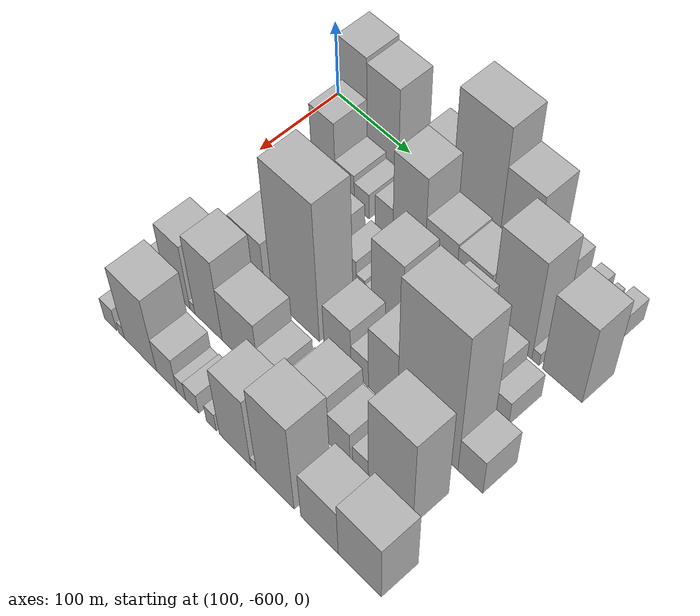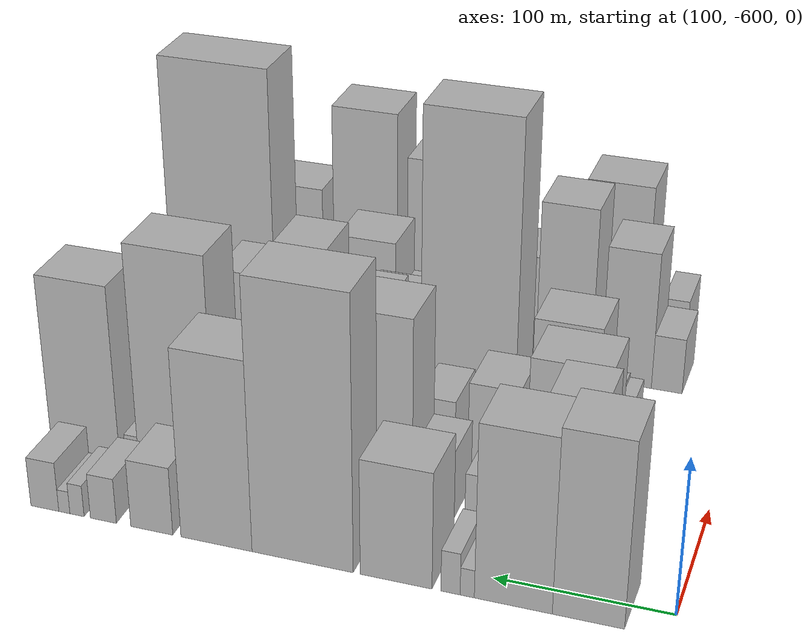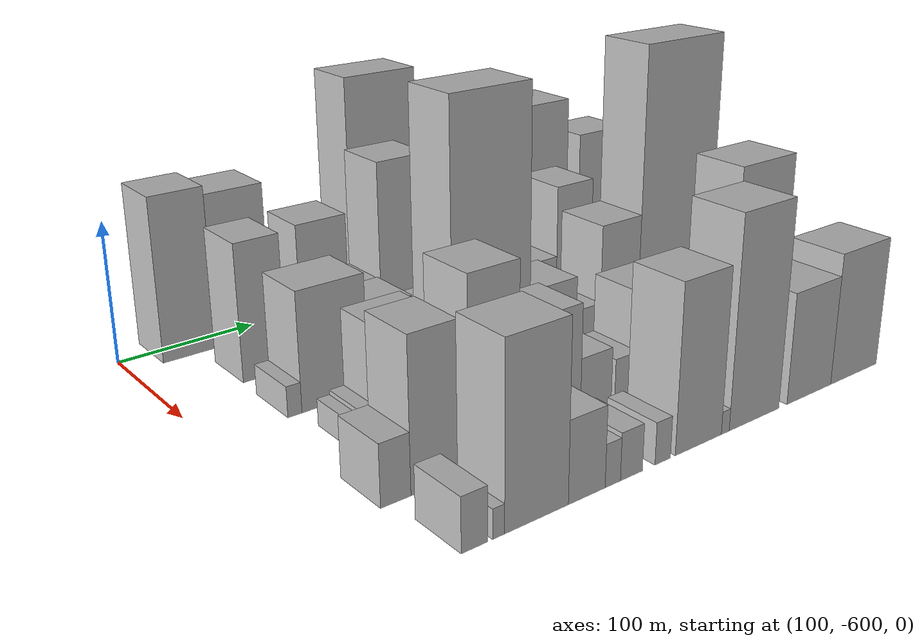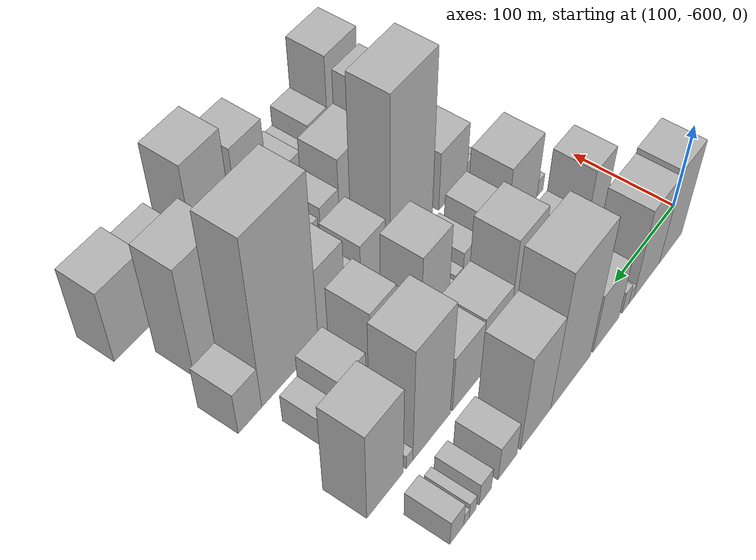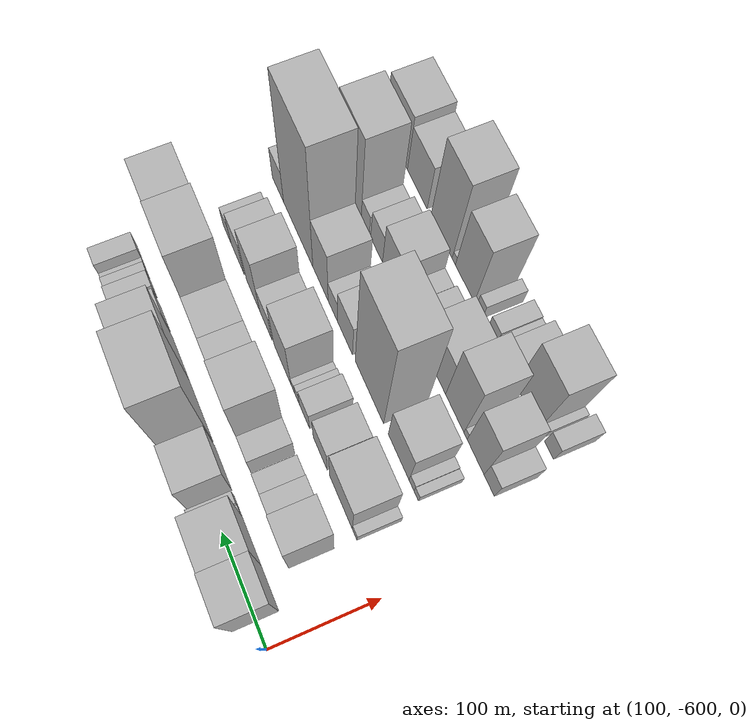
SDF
<sdf version="1.6">
 <world name="default">
  <model name="building_9">
   <static>1</static>
   <pose>100.0000 -557.1358 0 0.000000 0.000000 0.000000</pose>
   <link name="link">
    <pose>0 0 58.50 0 0 0</pose>
    <collision name="collision"><geometry><box><size>40.0000 38.8533 117.0000</size></box></geometry></collision>
    <visual name="visual">
     <cast_shadows>0</cast_shadows>
     <geometry><box><size>40.0000 38.8533 117.0000</size></box></geometry>
     <material>
      <script>
       <uri>model://HANNAS_wall/materials/scripts</uri>
       <uri>model://HANNAS_wall/materials/textures</uri>
       <name>vrc/HANNAS_wall</name>
      </script>
     </material>
    </visual>
   </link>
  </model>
  <model name="building_10">
   <static>1</static>
   <pose>100.0000 -516.2631 0 0.000000 0.000000 0.000000</pose>
   <link name="link">
    <pose>0 0 55.50 0 0 0</pose>
    <collision name="collision"><geometry><box><size>40.0000 42.8921 111.0000</size></box></geometry></collision>
    <visual name="visual">
     <cast_shadows>0</cast_shadows>
     <geometry><box><size>40.0000 42.8921 111.0000</size></box></geometry>
     <material>
      <script>
       <uri>model://HANNAS_wall/materials/scripts</uri>
       <uri>model://HANNAS_wall/materials/textures</uri>
       <name>vrc/HANNAS_wall</name>
      </script>
     </material>
    </visual>
   </link>
  </model>
  <model name="building_11">
   <static>1</static>
   <pose>100.0000 -490.8703 0 0.000000 0.000000 0.000000</pose>
   <link name="link">
    <pose>0 0 9.00 0 0 0</pose>
    <collision name="collision"><geometry><box><size>40.0000 7.8936 18.0000</size></box></geometry></collision>
    <visual name="visual">
     <cast_shadows>0</cast_shadows>
     <geometry><box><size>40.0000 7.8936 18.0000</size></box></geometry>
     <material>
      <script>
       <uri>model://HANNAS_wall/materials/scripts</uri>
       <uri>model://HANNAS_wall/materials/textures</uri>
       <name>vrc/HANNAS_wall</name>
      </script>
     </material>
    </visual>
   </link>
  </model>
  <model name="building_12">
   <static>1</static>
   <pose>100.0000 -481.5150 0 0.000000 0.000000 0.000000</pose>
   <link name="link">
    <pose>0 0 13.50 0 0 0</pose>
    <collision name="collision"><geometry><box><size>40.0000 10.8168 27.0000</size></box></geometry></collision>
    <visual name="visual">
     <cast_shadows>0</cast_shadows>
     <geometry><box><size>40.0000 10.8168 27.0000</size></box></geometry>
     <material>
      <script>
       <uri>model://HANNAS_wall/materials/scripts</uri>
       <uri>model://HANNAS_wall/materials/textures</uri>
       <name>vrc/HANNAS_wall</name>
      </script>
     </material>
    </visual>
   </link>
  </model>
  <model name="building_13">
   <static>1</static>
   <pose>100.0000 -450.6079 0 0.000000 0.000000 0.000000</pose>
   <link name="link">
    <pose>0 0 37.50 0 0 0</pose>
    <collision name="collision"><geometry><box><size>40.0000 40.9975 75.0000</size></box></geometry></collision>
    <visual name="visual">
     <cast_shadows>0</cast_shadows>
     <geometry><box><size>40.0000 40.9975 75.0000</size></box></geometry>
     <material>
      <script>
       <uri>model://HANNAS_wall/materials/scripts</uri>
       <uri>model://HANNAS_wall/materials/textures</uri>
       <name>vrc/HANNAS_wall</name>
      </script>
     </material>
    </visual>
   </link>
  </model>
  <model name="building_14">
   <static>1</static>
   <pose>100.0000 -396.3436 0 0.000000 0.000000 0.000000</pose>
   <link name="link">
    <pose>0 0 87.00 0 0 0</pose>
    <collision name="collision"><geometry><box><size>40.0000 59.5311 174.0000</size></box></geometry></collision>
    <visual name="visual">
     <cast_shadows>0</cast_shadows>
     <geometry><box><size>40.0000 59.5311 174.0000</size></box></geometry>
     <material>
      <script>
       <uri>model://HANNAS_wall/materials/scripts</uri>
       <uri>model://HANNAS_wall/materials/textures</uri>
       <name>vrc/HANNAS_wall</name>
      </script>
     </material>
    </visual>
   </link>
  </model>
  <model name="building_15">
   <static>1</static>
   <pose>100.0000 -345.0604 0 0.000000 0.000000 0.000000</pose>
   <link name="link">
    <pose>0 0 61.50 0 0 0</pose>
    <collision name="collision"><geometry><box><size>40.0000 43.0352 123.0000</size></box></geometry></collision>
    <visual name="visual">
     <cast_shadows>0</cast_shadows>
     <geometry><box><size>40.0000 43.0352 123.0000</size></box></geometry>
     <material>
      <script>
       <uri>model://HANNAS_wall/materials/scripts</uri>
       <uri>model://HANNAS_wall/materials/textures</uri>
       <name>vrc/HANNAS_wall</name>
      </script>
     </material>
    </visual>
   </link>
  </model>
  <model name="building_16">
   <static>1</static>
   <pose>100.0000 -305.5675 0 0.000000 0.000000 0.000000</pose>
   <link name="link">
    <pose>0 0 22.50 0 0 0</pose>
    <collision name="collision"><geometry><box><size>40.0000 25.9506 45.0000</size></box></geometry></collision>
    <visual name="visual">
     <cast_shadows>0</cast_shadows>
     <geometry><box><size>40.0000 25.9506 45.0000</size></box></geometry>
     <material>
      <script>
       <uri>model://HANNAS_wall/materials/scripts</uri>
       <uri>model://HANNAS_wall/materials/textures</uri>
       <name>vrc/HANNAS_wall</name>
      </script>
     </material>
    </visual>
   </link>
  </model>
  <model name="building_17">
   <static>1</static>
   <pose>100.0000 -275.4437 0 0.000000 0.000000 0.000000</pose>
   <link name="link">
    <pose>0 0 15.00 0 0 0</pose>
    <collision name="collision"><geometry><box><size>40.0000 16.2969 30.0000</size></box></geometry></collision>
    <visual name="visual">
     <cast_shadows>0</cast_shadows>
     <geometry><box><size>40.0000 16.2969 30.0000</size></box></geometry>
     <material>
      <script>
       <uri>model://HANNAS_wall/materials/scripts</uri>
       <uri>model://HANNAS_wall/materials/textures</uri>
       <name>vrc/HANNAS_wall</name>
      </script>
     </material>
    </visual>
   </link>
  </model>
  <model name="building_18">
   <static>1</static>
   <pose>100.0000 -258.7932 0 0.000000 0.000000 0.000000</pose>
   <link name="link">
    <pose>0 0 10.50 0 0 0</pose>
    <collision name="collision"><geometry><box><size>40.0000 9.0042 21.0000</size></box></geometry></collision>
    <visual name="visual">
     <cast_shadows>0</cast_shadows>
     <geometry><box><size>40.0000 9.0042 21.0000</size></box></geometry>
     <material>
      <script>
       <uri>model://HANNAS_wall/materials/scripts</uri>
       <uri>model://HANNAS_wall/materials/textures</uri>
       <name>vrc/HANNAS_wall</name>
      </script>
     </material>
    </visual>
   </link>
  </model>
  <model name="building_19">
   <static>1</static>
   <pose>100.0000 -250.7659 0 0.000000 0.000000 0.000000</pose>
   <link name="link">
    <pose>0 0 7.50 0 0 0</pose>
    <collision name="collision"><geometry><box><size>40.0000 7.0503 15.0000</size></box></geometry></collision>
    <visual name="visual">
     <cast_shadows>0</cast_shadows>
     <geometry><box><size>40.0000 7.0503 15.0000</size></box></geometry>
     <material>
      <script>
       <uri>model://HANNAS_wall/materials/scripts</uri>
       <uri>model://HANNAS_wall/materials/textures</uri>
       <name>vrc/HANNAS_wall</name>
      </script>
     </material>
    </visual>
   </link>
  </model>
  <model name="building_20">
   <static>1</static>
   <pose>100.0000 -238.3078 0 0.000000 0.000000 0.000000</pose>
   <link name="link">
    <pose>0 0 16.50 0 0 0</pose>
    <collision name="collision"><geometry><box><size>40.0000 17.8659 33.0000</size></box></geometry></collision>
    <visual name="visual">
     <cast_shadows>0</cast_shadows>
     <geometry><box><size>40.0000 17.8659 33.0000</size></box></geometry>
     <material>
      <script>
       <uri>model://HANNAS_wall/materials/scripts</uri>
       <uri>model://HANNAS_wall/materials/textures</uri>
       <name>vrc/HANNAS_wall</name>
      </script>
     </material>
    </visual>
   </link>
  </model>
  <model name="building_64">
   <static>1</static>
   <pose>160.0000 -532.4082 0 0.000000 0.000000 0.000000</pose>
   <link name="link">
    <pose>0 0 48.00 0 0 0</pose>
    <collision name="collision"><geometry><box><size>40.0000 32.0256 96.0000</size></box></geometry></collision>
    <visual name="visual">
     <cast_shadows>0</cast_shadows>
     <geometry><box><size>40.0000 32.0256 96.0000</size></box></geometry>
     <material>
      <script>
       <uri>model://HANNAS_wall/materials/scripts</uri>
       <uri>model://HANNAS_wall/materials/textures</uri>
       <name>vrc/HANNAS_wall</name>
      </script>
     </material>
    </visual>
   </link>
  </model>
  <model name="building_65">
   <static>1</static>
   <pose>160.0000 -503.7278 0 0.000000 0.000000 0.000000</pose>
   <link name="link">
    <pose>0 0 22.50 0 0 0</pose>
    <collision name="collision"><geometry><box><size>40.0000 25.3352 45.0000</size></box></geometry></collision>
    <visual name="visual">
     <cast_shadows>0</cast_shadows>
     <geometry><box><size>40.0000 25.3352 45.0000</size></box></geometry>
     <material>
      <script>
       <uri>model://HANNAS_wall/materials/scripts</uri>
       <uri>model://HANNAS_wall/materials/textures</uri>
       <name>vrc/HANNAS_wall</name>
      </script>
     </material>
    </visual>
   </link>
  </model>
  <model name="building_66">
   <static>1</static>
   <pose>160.0000 -481.2757 0 0.000000 0.000000 0.000000</pose>
   <link name="link">
    <pose>0 0 18.00 0 0 0</pose>
    <collision name="collision"><geometry><box><size>40.0000 19.5689 36.0000</size></box></geometry></collision>
    <visual name="visual">
     <cast_shadows>0</cast_shadows>
     <geometry><box><size>40.0000 19.5689 36.0000</size></box></geometry>
     <material>
      <script>
       <uri>model://HANNAS_wall/materials/scripts</uri>
       <uri>model://HANNAS_wall/materials/textures</uri>
       <name>vrc/HANNAS_wall</name>
      </script>
     </material>
    </visual>
   </link>
  </model>
  <model name="building_67">
   <static>1</static>
   <pose>160.0000 -451.9399 0 0.000000 0.000000 0.000000</pose>
   <link name="link">
    <pose>0 0 22.50 0 0 0</pose>
    <collision name="collision"><geometry><box><size>40.0000 23.1026 45.0000</size></box></geometry></collision>
    <visual name="visual">
     <cast_shadows>0</cast_shadows>
     <geometry><box><size>40.0000 23.1026 45.0000</size></box></geometry>
     <material>
      <script>
       <uri>model://HANNAS_wall/materials/scripts</uri>
       <uri>model://HANNAS_wall/materials/textures</uri>
       <name>vrc/HANNAS_wall</name>
      </script>
     </material>
    </visual>
   </link>
  </model>
  <model name="building_68">
   <static>1</static>
   <pose>160.0000 -420.1118 0 0.000000 0.000000 0.000000</pose>
   <link name="link">
    <pose>0 0 64.50 0 0 0</pose>
    <collision name="collision"><geometry><box><size>40.0000 40.5537 129.0000</size></box></geometry></collision>
    <visual name="visual">
     <cast_shadows>0</cast_shadows>
     <geometry><box><size>40.0000 40.5537 129.0000</size></box></geometry>
     <material>
      <script>
       <uri>model://HANNAS_wall/materials/scripts</uri>
       <uri>model://HANNAS_wall/materials/textures</uri>
       <name>vrc/HANNAS_wall</name>
      </script>
     </material>
    </visual>
   </link>
  </model>
  <model name="building_69">
   <static>1</static>
   <pose>160.0000 -380.5081 0 0.000000 0.000000 0.000000</pose>
   <link name="link">
    <pose>0 0 37.50 0 0 0</pose>
    <collision name="collision"><geometry><box><size>40.0000 38.6537 75.0000</size></box></geometry></collision>
    <visual name="visual">
     <cast_shadows>0</cast_shadows>
     <geometry><box><size>40.0000 38.6537 75.0000</size></box></geometry>
     <material>
      <script>
       <uri>model://HANNAS_wall/materials/scripts</uri>
       <uri>model://HANNAS_wall/materials/textures</uri>
       <name>vrc/HANNAS_wall</name>
      </script>
     </material>
    </visual>
   </link>
  </model>
  <model name="building_70">
   <static>1</static>
   <pose>160.0000 -341.2754 0 0.000000 0.000000 0.000000</pose>
   <link name="link">
    <pose>0 0 36.00 0 0 0</pose>
    <collision name="collision"><geometry><box><size>40.0000 39.8116 72.0000</size></box></geometry></collision>
    <visual name="visual">
     <cast_shadows>0</cast_shadows>
     <geometry><box><size>40.0000 39.8116 72.0000</size></box></geometry>
     <material>
      <script>
       <uri>model://HANNAS_wall/materials/scripts</uri>
       <uri>model://HANNAS_wall/materials/textures</uri>
       <name>vrc/HANNAS_wall</name>
      </script>
     </material>
    </visual>
   </link>
  </model>
  <model name="building_71">
   <static>1</static>
   <pose>160.0000 -293.6433 0 0.000000 0.000000 0.000000</pose>
   <link name="link">
    <pose>0 0 73.50 0 0 0</pose>
    <collision name="collision"><geometry><box><size>40.0000 49.4527 147.0000</size></box></geometry></collision>
    <visual name="visual">
     <cast_shadows>0</cast_shadows>
     <geometry><box><size>40.0000 49.4527 147.0000</size></box></geometry>
     <material>
      <script>
       <uri>model://HANNAS_wall/materials/scripts</uri>
       <uri>model://HANNAS_wall/materials/textures</uri>
       <name>vrc/HANNAS_wall</name>
      </script>
     </material>
    </visual>
   </link>
  </model>
  <model name="building_72">
   <static>1</static>
   <pose>160.0000 -264.6489 0 0.000000 0.000000 0.000000</pose>
   <link name="link">
    <pose>0 0 9.00 0 0 0</pose>
    <collision name="collision"><geometry><box><size>40.0000 8.5360 18.0000</size></box></geometry></collision>
    <visual name="visual">
     <cast_shadows>0</cast_shadows>
     <geometry><box><size>40.0000 8.5360 18.0000</size></box></geometry>
     <material>
      <script>
       <uri>model://HANNAS_wall/materials/scripts</uri>
       <uri>model://HANNAS_wall/materials/textures</uri>
       <name>vrc/HANNAS_wall</name>
      </script>
     </material>
    </visual>
   </link>
  </model>
  <model name="building_73">
   <static>1</static>
   <pose>160.0000 -233.7336 0 0.000000 0.000000 0.000000</pose>
   <link name="link">
    <pose>0 0 58.50 0 0 0</pose>
    <collision name="collision"><geometry><box><size>40.0000 45.2946 117.0000</size></box></geometry></collision>
    <visual name="visual">
     <cast_shadows>0</cast_shadows>
     <geometry><box><size>40.0000 45.2946 117.0000</size></box></geometry>
     <material>
      <script>
       <uri>model://HANNAS_wall/materials/scripts</uri>
       <uri>model://HANNAS_wall/materials/textures</uri>
       <name>vrc/HANNAS_wall</name>
      </script>
     </material>
    </visual>
   </link>
  </model>
  <model name="building_118">
   <static>1</static>
   <pose>220.0000 -544.5752 0 0.000000 0.000000 0.000000</pose>
   <link name="link">
    <pose>0 0 10.50 0 0 0</pose>
    <collision name="collision"><geometry><box><size>40.0000 9.9184 21.0000</size></box></geometry></collision>
    <visual name="visual">
     <cast_shadows>0</cast_shadows>
     <geometry><box><size>40.0000 9.9184 21.0000</size></box></geometry>
     <material>
      <script>
       <uri>model://HANNAS_wall/materials/scripts</uri>
       <uri>model://HANNAS_wall/materials/textures</uri>
       <name>vrc/HANNAS_wall</name>
      </script>
     </material>
    </visual>
   </link>
  </model>
  <model name="building_119">
   <static>1</static>
   <pose>220.0000 -515.4357 0 0.000000 0.000000 0.000000</pose>
   <link name="link">
    <pose>0 0 40.50 0 0 0</pose>
    <collision name="collision"><geometry><box><size>40.0000 48.3606 81.0000</size></box></geometry></collision>
    <visual name="visual">
     <cast_shadows>0</cast_shadows>
     <geometry><box><size>40.0000 48.3606 81.0000</size></box></geometry>
     <material>
      <script>
       <uri>model://HANNAS_wall/materials/scripts</uri>
       <uri>model://HANNAS_wall/materials/textures</uri>
       <name>vrc/HANNAS_wall</name>
      </script>
     </material>
    </visual>
   </link>
  </model>
  <model name="building_120">
   <static>1</static>
   <pose>220.0000 -470.8532 0 0.000000 0.000000 0.000000</pose>
   <link name="link">
    <pose>0 0 28.50 0 0 0</pose>
    <collision name="collision"><geometry><box><size>40.0000 30.8044 57.0000</size></box></geometry></collision>
    <visual name="visual">
     <cast_shadows>0</cast_shadows>
     <geometry><box><size>40.0000 30.8044 57.0000</size></box></geometry>
     <material>
      <script>
       <uri>model://HANNAS_wall/materials/scripts</uri>
       <uri>model://HANNAS_wall/materials/textures</uri>
       <name>vrc/HANNAS_wall</name>
      </script>
     </material>
    </visual>
   </link>
  </model>
  <model name="building_121">
   <static>1</static>
   <pose>220.0000 -435.9542 0 0.000000 0.000000 0.000000</pose>
   <link name="link">
    <pose>0 0 21.00 0 0 0</pose>
    <collision name="collision"><geometry><box><size>40.0000 22.9935 42.0000</size></box></geometry></collision>
    <visual name="visual">
     <cast_shadows>0</cast_shadows>
     <geometry><box><size>40.0000 22.9935 42.0000</size></box></geometry>
     <material>
      <script>
       <uri>model://HANNAS_wall/materials/scripts</uri>
       <uri>model://HANNAS_wall/materials/textures</uri>
       <name>vrc/HANNAS_wall</name>
      </script>
     </material>
    </visual>
   </link>
  </model>
  <model name="building_122">
   <static>1</static>
   <pose>220.0000 -419.0120 0 0.000000 0.000000 0.000000</pose>
   <link name="link">
    <pose>0 0 12.00 0 0 0</pose>
    <collision name="collision"><geometry><box><size>40.0000 10.8909 24.0000</size></box></geometry></collision>
    <visual name="visual">
     <cast_shadows>0</cast_shadows>
     <geometry><box><size>40.0000 10.8909 24.0000</size></box></geometry>
     <material>
      <script>
       <uri>model://HANNAS_wall/materials/scripts</uri>
       <uri>model://HANNAS_wall/materials/textures</uri>
       <name>vrc/HANNAS_wall</name>
      </script>
     </material>
    </visual>
   </link>
  </model>
  <model name="building_123">
   <static>1</static>
   <pose>220.0000 -409.2672 0 0.000000 0.000000 0.000000</pose>
   <link name="link">
    <pose>0 0 9.00 0 0 0</pose>
    <collision name="collision"><geometry><box><size>40.0000 8.5987 18.0000</size></box></geometry></collision>
    <visual name="visual">
     <cast_shadows>0</cast_shadows>
     <geometry><box><size>40.0000 8.5987 18.0000</size></box></geometry>
     <material>
      <script>
       <uri>model://HANNAS_wall/materials/scripts</uri>
       <uri>model://HANNAS_wall/materials/textures</uri>
       <name>vrc/HANNAS_wall</name>
      </script>
     </material>
    </visual>
   </link>
  </model>
  <model name="building_124">
   <static>1</static>
   <pose>220.0000 -385.2685 0 0.000000 0.000000 0.000000</pose>
   <link name="link">
    <pose>0 0 49.50 0 0 0</pose>
    <collision name="collision"><geometry><box><size>40.0000 39.3986 99.0000</size></box></geometry></collision>
    <visual name="visual">
     <cast_shadows>0</cast_shadows>
     <geometry><box><size>40.0000 39.3986 99.0000</size></box></geometry>
     <material>
      <script>
       <uri>model://HANNAS_wall/materials/scripts</uri>
       <uri>model://HANNAS_wall/materials/textures</uri>
       <name>vrc/HANNAS_wall</name>
      </script>
     </material>
    </visual>
   </link>
  </model>
  <model name="building_125">
   <static>1</static>
   <pose>220.0000 -346.0327 0 0.000000 0.000000 0.000000</pose>
   <link name="link">
    <pose>0 0 27.00 0 0 0</pose>
    <collision name="collision"><geometry><box><size>40.0000 29.0730 54.0000</size></box></geometry></collision>
    <visual name="visual">
     <cast_shadows>0</cast_shadows>
     <geometry><box><size>40.0000 29.0730 54.0000</size></box></geometry>
     <material>
      <script>
       <uri>model://HANNAS_wall/materials/scripts</uri>
       <uri>model://HANNAS_wall/materials/textures</uri>
       <name>vrc/HANNAS_wall</name>
      </script>
     </material>
    </visual>
   </link>
  </model>
  <model name="building_126">
   <static>1</static>
   <pose>220.0000 -314.9784 0 0.000000 0.000000 0.000000</pose>
   <link name="link">
    <pose>0 0 52.50 0 0 0</pose>
    <collision name="collision"><geometry><box><size>40.0000 33.0356 105.0000</size></box></geometry></collision>
    <visual name="visual">
     <cast_shadows>0</cast_shadows>
     <geometry><box><size>40.0000 33.0356 105.0000</size></box></geometry>
     <material>
      <script>
       <uri>model://HANNAS_wall/materials/scripts</uri>
       <uri>model://HANNAS_wall/materials/textures</uri>
       <name>vrc/HANNAS_wall</name>
      </script>
     </material>
    </visual>
   </link>
  </model>
  <model name="building_127">
   <static>1</static>
   <pose>220.0000 -276.3526 0 0.000000 0.000000 0.000000</pose>
   <link name="link">
    <pose>0 0 31.50 0 0 0</pose>
    <collision name="collision"><geometry><box><size>40.0000 32.2160 63.0000</size></box></geometry></collision>
    <visual name="visual">
     <cast_shadows>0</cast_shadows>
     <geometry><box><size>40.0000 32.2160 63.0000</size></box></geometry>
     <material>
      <script>
       <uri>model://HANNAS_wall/materials/scripts</uri>
       <uri>model://HANNAS_wall/materials/textures</uri>
       <name>vrc/HANNAS_wall</name>
      </script>
     </material>
    </visual>
   </link>
  </model>
  <model name="building_128">
   <static>1</static>
   <pose>220.0000 -249.6729 0 0.000000 0.000000 0.000000</pose>
   <link name="link">
    <pose>0 0 18.00 0 0 0</pose>
    <collision name="collision"><geometry><box><size>40.0000 21.1434 36.0000</size></box></geometry></collision>
    <visual name="visual">
     <cast_shadows>0</cast_shadows>
     <geometry><box><size>40.0000 21.1434 36.0000</size></box></geometry>
     <material>
      <script>
       <uri>model://HANNAS_wall/materials/scripts</uri>
       <uri>model://HANNAS_wall/materials/textures</uri>
       <name>vrc/HANNAS_wall</name>
      </script>
     </material>
    </visual>
   </link>
  </model>
  <model name="building_174">
   <static>1</static>
   <pose>280.0000 -535.5728 0 0.000000 0.000000 0.000000</pose>
   <link name="link">
    <pose>0 0 9.00 0 0 0</pose>
    <collision name="collision"><geometry><box><size>40.0000 8.7943 18.0000</size></box></geometry></collision>
    <visual name="visual">
     <cast_shadows>0</cast_shadows>
     <geometry><box><size>40.0000 8.7943 18.0000</size></box></geometry>
     <material>
      <script>
       <uri>model://HANNAS_wall/materials/scripts</uri>
       <uri>model://HANNAS_wall/materials/textures</uri>
       <name>vrc/HANNAS_wall</name>
      </script>
     </material>
    </visual>
   </link>
  </model>
  <model name="building_175">
   <static>1</static>
   <pose>280.0000 -525.9886 0 0.000000 0.000000 0.000000</pose>
   <link name="link">
    <pose>0 0 10.50 0 0 0</pose>
    <collision name="collision"><geometry><box><size>40.0000 10.3740 21.0000</size></box></geometry></collision>
    <visual name="visual">
     <cast_shadows>0</cast_shadows>
     <geometry><box><size>40.0000 10.3740 21.0000</size></box></geometry>
     <material>
      <script>
       <uri>model://HANNAS_wall/materials/scripts</uri>
       <uri>model://HANNAS_wall/materials/textures</uri>
       <name>vrc/HANNAS_wall</name>
      </script>
     </material>
    </visual>
   </link>
  </model>
  <model name="building_176">
   <static>1</static>
   <pose>280.0000 -499.4586 0 0.000000 0.000000 0.000000</pose>
   <link name="link">
    <pose>0 0 36.00 0 0 0</pose>
    <collision name="collision"><geometry><box><size>40.0000 42.6861 72.0000</size></box></geometry></collision>
    <visual name="visual">
     <cast_shadows>0</cast_shadows>
     <geometry><box><size>40.0000 42.6861 72.0000</size></box></geometry>
     <material>
      <script>
       <uri>model://HANNAS_wall/materials/scripts</uri>
       <uri>model://HANNAS_wall/materials/textures</uri>
       <name>vrc/HANNAS_wall</name>
      </script>
     </material>
    </visual>
   </link>
  </model>
  <model name="building_177">
   <static>1</static>
   <pose>280.0000 -437.4522 0 0.000000 0.000000 0.000000</pose>
   <link name="link">
    <pose>0 0 100.50 0 0 0</pose>
    <collision name="collision"><geometry><box><size>40.0000 61.3267 201.0000</size></box></geometry></collision>
    <visual name="visual">
     <cast_shadows>0</cast_shadows>
     <geometry><box><size>40.0000 61.3267 201.0000</size></box></geometry>
     <material>
      <script>
       <uri>model://HANNAS_wall/materials/scripts</uri>
       <uri>model://HANNAS_wall/materials/textures</uri>
       <name>vrc/HANNAS_wall</name>
      </script>
     </material>
    </visual>
   </link>
  </model>
  <model name="building_178">
   <static>1</static>
   <pose>280.0000 -383.7913 0 0.000000 0.000000 0.000000</pose>
   <link name="link">
    <pose>0 0 33.00 0 0 0</pose>
    <collision name="collision"><geometry><box><size>40.0000 33.9950 66.0000</size></box></geometry></collision>
    <visual name="visual">
     <cast_shadows>0</cast_shadows>
     <geometry><box><size>40.0000 33.9950 66.0000</size></box></geometry>
     <material>
      <script>
       <uri>model://HANNAS_wall/materials/scripts</uri>
       <uri>model://HANNAS_wall/materials/textures</uri>
       <name>vrc/HANNAS_wall</name>
      </script>
     </material>
    </visual>
   </link>
  </model>
  <model name="building_179">
   <static>1</static>
   <pose>280.0000 -356.0876 0 0.000000 0.000000 0.000000</pose>
   <link name="link">
    <pose>0 0 21.00 0 0 0</pose>
    <collision name="collision"><geometry><box><size>40.0000 21.4124 42.0000</size></box></geometry></collision>
    <visual name="visual">
     <cast_shadows>0</cast_shadows>
     <geometry><box><size>40.0000 21.4124 42.0000</size></box></geometry>
     <material>
      <script>
       <uri>model://HANNAS_wall/materials/scripts</uri>
       <uri>model://HANNAS_wall/materials/textures</uri>
       <name>vrc/HANNAS_wall</name>
      </script>
     </material>
    </visual>
   </link>
  </model>
  <model name="building_180">
   <static>1</static>
   <pose>280.0000 -327.7090 0 0.000000 0.000000 0.000000</pose>
   <link name="link">
    <pose>0 0 48.00 0 0 0</pose>
    <collision name="collision"><geometry><box><size>40.0000 35.3448 96.0000</size></box></geometry></collision>
    <visual name="visual">
     <cast_shadows>0</cast_shadows>
     <geometry><box><size>40.0000 35.3448 96.0000</size></box></geometry>
     <material>
      <script>
       <uri>model://HANNAS_wall/materials/scripts</uri>
       <uri>model://HANNAS_wall/materials/textures</uri>
       <name>vrc/HANNAS_wall</name>
      </script>
     </material>
    </visual>
   </link>
  </model>
  <model name="building_181">
   <static>1</static>
   <pose>280.0000 -274.4801 0 0.000000 0.000000 0.000000</pose>
   <link name="link">
    <pose>0 0 105.00 0 0 0</pose>
    <collision name="collision"><geometry><box><size>40.0000 71.1132 210.0000</size></box></geometry></collision>
    <visual name="visual">
     <cast_shadows>0</cast_shadows>
     <geometry><box><size>40.0000 71.1132 210.0000</size></box></geometry>
     <material>
      <script>
       <uri>model://HANNAS_wall/materials/scripts</uri>
       <uri>model://HANNAS_wall/materials/textures</uri>
       <name>vrc/HANNAS_wall</name>
      </script>
     </material>
    </visual>
   </link>
  </model>
  <model name="building_182">
   <static>1</static>
   <pose>280.0000 -224.8224 0 0.000000 0.000000 0.000000</pose>
   <link name="link">
    <pose>0 0 27.00 0 0 0</pose>
    <collision name="collision"><geometry><box><size>40.0000 28.2021 54.0000</size></box></geometry></collision>
    <visual name="visual">
     <cast_shadows>0</cast_shadows>
     <geometry><box><size>40.0000 28.2021 54.0000</size></box></geometry>
     <material>
      <script>
       <uri>model://HANNAS_wall/materials/scripts</uri>
       <uri>model://HANNAS_wall/materials/textures</uri>
       <name>vrc/HANNAS_wall</name>
      </script>
     </material>
    </visual>
   </link>
  </model>
  <model name="building_226">
   <static>1</static>
   <pose>340.0000 -551.4052 0 0.000000 0.000000 0.000000</pose>
   <link name="link">
    <pose>0 0 19.50 0 0 0</pose>
    <collision name="collision"><geometry><box><size>40.0000 19.7607 39.0000</size></box></geometry></collision>
    <visual name="visual">
     <cast_shadows>0</cast_shadows>
     <geometry><box><size>40.0000 19.7607 39.0000</size></box></geometry>
     <material>
      <script>
       <uri>model://HANNAS_wall/materials/scripts</uri>
       <uri>model://HANNAS_wall/materials/textures</uri>
       <name>vrc/HANNAS_wall</name>
      </script>
     </material>
    </visual>
   </link>
  </model>
  <model name="building_227">
   <static>1</static>
   <pose>340.0000 -525.0801 0 0.000000 0.000000 0.000000</pose>
   <link name="link">
    <pose>0 0 48.00 0 0 0</pose>
    <collision name="collision"><geometry><box><size>40.0000 32.8895 96.0000</size></box></geometry></collision>
    <visual name="visual">
     <cast_shadows>0</cast_shadows>
     <geometry><box><size>40.0000 32.8895 96.0000</size></box></geometry>
     <material>
      <script>
       <uri>model://HANNAS_wall/materials/scripts</uri>
       <uri>model://HANNAS_wall/materials/textures</uri>
       <name>vrc/HANNAS_wall</name>
      </script>
     </material>
    </visual>
   </link>
  </model>
  <model name="building_228">
   <static>1</static>
   <pose>340.0000 -505.3691 0 0.000000 0.000000 0.000000</pose>
   <link name="link">
    <pose>0 0 7.50 0 0 0</pose>
    <collision name="collision"><geometry><box><size>40.0000 6.5325 15.0000</size></box></geometry></collision>
    <visual name="visual">
     <cast_shadows>0</cast_shadows>
     <geometry><box><size>40.0000 6.5325 15.0000</size></box></geometry>
     <material>
      <script>
       <uri>model://HANNAS_wall/materials/scripts</uri>
       <uri>model://HANNAS_wall/materials/textures</uri>
       <name>vrc/HANNAS_wall</name>
      </script>
     </material>
    </visual>
   </link>
  </model>
  <model name="building_229">
   <static>1</static>
   <pose>340.0000 -483.7255 0 0.000000 0.000000 0.000000</pose>
   <link name="link">
    <pose>0 0 60.00 0 0 0</pose>
    <collision name="collision"><geometry><box><size>40.0000 36.7548 120.0000</size></box></geometry></collision>
    <visual name="visual">
     <cast_shadows>0</cast_shadows>
     <geometry><box><size>40.0000 36.7548 120.0000</size></box></geometry>
     <material>
      <script>
       <uri>model://HANNAS_wall/materials/scripts</uri>
       <uri>model://HANNAS_wall/materials/textures</uri>
       <name>vrc/HANNAS_wall</name>
      </script>
     </material>
    </visual>
   </link>
  </model>
  <model name="building_230">
   <static>1</static>
   <pose>340.0000 -441.3747 0 0.000000 0.000000 0.000000</pose>
   <link name="link">
    <pose>0 0 40.50 0 0 0</pose>
    <collision name="collision"><geometry><box><size>40.0000 47.9469 81.0000</size></box></geometry></collision>
    <visual name="visual">
     <cast_shadows>0</cast_shadows>
     <geometry><box><size>40.0000 47.9469 81.0000</size></box></geometry>
     <material>
      <script>
       <uri>model://HANNAS_wall/materials/scripts</uri>
       <uri>model://HANNAS_wall/materials/textures</uri>
       <name>vrc/HANNAS_wall</name>
      </script>
     </material>
    </visual>
   </link>
  </model>
  <model name="building_231">
   <static>1</static>
   <pose>340.0000 -404.6490 0 0.000000 0.000000 0.000000</pose>
   <link name="link">
    <pose>0 0 22.50 0 0 0</pose>
    <collision name="collision"><geometry><box><size>40.0000 25.5045 45.0000</size></box></geometry></collision>
    <visual name="visual">
     <cast_shadows>0</cast_shadows>
     <geometry><box><size>40.0000 25.5045 45.0000</size></box></geometry>
     <material>
      <script>
       <uri>model://HANNAS_wall/materials/scripts</uri>
       <uri>model://HANNAS_wall/materials/textures</uri>
       <name>vrc/HANNAS_wall</name>
      </script>
     </material>
    </visual>
   </link>
  </model>
  <model name="building_232">
   <static>1</static>
   <pose>340.0000 -379.4689 0 0.000000 0.000000 0.000000</pose>
   <link name="link">
    <pose>0 0 18.00 0 0 0</pose>
    <collision name="collision"><geometry><box><size>40.0000 18.8557 36.0000</size></box></geometry></collision>
    <visual name="visual">
     <cast_shadows>0</cast_shadows>
     <geometry><box><size>40.0000 18.8557 36.0000</size></box></geometry>
     <material>
      <script>
       <uri>model://HANNAS_wall/materials/scripts</uri>
       <uri>model://HANNAS_wall/materials/textures</uri>
       <name>vrc/HANNAS_wall</name>
      </script>
     </material>
    </visual>
   </link>
  </model>
  <model name="building_233">
   <static>1</static>
   <pose>340.0000 -350.2105 0 0.000000 0.000000 0.000000</pose>
   <link name="link">
    <pose>0 0 37.50 0 0 0</pose>
    <collision name="collision"><geometry><box><size>40.0000 39.6611 75.0000</size></box></geometry></collision>
    <visual name="visual">
     <cast_shadows>0</cast_shadows>
     <geometry><box><size>40.0000 39.6611 75.0000</size></box></geometry>
     <material>
      <script>
       <uri>model://HANNAS_wall/materials/scripts</uri>
       <uri>model://HANNAS_wall/materials/textures</uri>
       <name>vrc/HANNAS_wall</name>
      </script>
     </material>
    </visual>
   </link>
  </model>
  <model name="building_234">
   <static>1</static>
   <pose>340.0000 -316.9643 0 0.000000 0.000000 0.000000</pose>
   <link name="link">
    <pose>0 0 25.50 0 0 0</pose>
    <collision name="collision"><geometry><box><size>40.0000 26.8313 51.0000</size></box></geometry></collision>
    <visual name="visual">
     <cast_shadows>0</cast_shadows>
     <geometry><box><size>40.0000 26.8313 51.0000</size></box></geometry>
     <material>
      <script>
       <uri>model://HANNAS_wall/materials/scripts</uri>
       <uri>model://HANNAS_wall/materials/textures</uri>
       <name>vrc/HANNAS_wall</name>
      </script>
     </material>
    </visual>
   </link>
  </model>
  <model name="building_235">
   <static>1</static>
   <pose>340.0000 -291.2076 0 0.000000 0.000000 0.000000</pose>
   <link name="link">
    <pose>0 0 18.00 0 0 0</pose>
    <collision name="collision"><geometry><box><size>40.0000 18.6821 36.0000</size></box></geometry></collision>
    <visual name="visual">
     <cast_shadows>0</cast_shadows>
     <geometry><box><size>40.0000 18.6821 36.0000</size></box></geometry>
     <material>
      <script>
       <uri>model://HANNAS_wall/materials/scripts</uri>
       <uri>model://HANNAS_wall/materials/textures</uri>
       <name>vrc/HANNAS_wall</name>
      </script>
     </material>
    </visual>
   </link>
  </model>
  <model name="building_236">
   <static>1</static>
   <pose>340.0000 -255.8105 0 0.000000 0.000000 0.000000</pose>
   <link name="link">
    <pose>0 0 69.00 0 0 0</pose>
    <collision name="collision"><geometry><box><size>40.0000 52.1121 138.0000</size></box></geometry></collision>
    <visual name="visual">
     <cast_shadows>0</cast_shadows>
     <geometry><box><size>40.0000 52.1121 138.0000</size></box></geometry>
     <material>
      <script>
       <uri>model://HANNAS_wall/materials/scripts</uri>
       <uri>model://HANNAS_wall/materials/textures</uri>
       <name>vrc/HANNAS_wall</name>
      </script>
     </material>
    </visual>
   </link>
  </model>
  <model name="building_283">
   <static>1</static>
   <pose>400.0000 -544.2001 0 0.000000 0.000000 0.000000</pose>
   <link name="link">
    <pose>0 0 16.50 0 0 0</pose>
    <collision name="collision"><geometry><box><size>40.0000 17.0544 33.0000</size></box></geometry></collision>
    <visual name="visual">
     <cast_shadows>0</cast_shadows>
     <geometry><box><size>40.0000 17.0544 33.0000</size></box></geometry>
     <material>
      <script>
       <uri>model://HANNAS_wall/materials/scripts</uri>
       <uri>model://HANNAS_wall/materials/textures</uri>
       <name>vrc/HANNAS_wall</name>
      </script>
     </material>
    </visual>
   </link>
  </model>
  <model name="building_284">
   <static>1</static>
   <pose>400.0000 -528.7040 0 0.000000 0.000000 0.000000</pose>
   <link name="link">
    <pose>0 0 9.00 0 0 0</pose>
    <collision name="collision"><geometry><box><size>40.0000 7.9379 18.0000</size></box></geometry></collision>
    <visual name="visual">
     <cast_shadows>0</cast_shadows>
     <geometry><box><size>40.0000 7.9379 18.0000</size></box></geometry>
     <material>
      <script>
       <uri>model://HANNAS_wall/materials/scripts</uri>
       <uri>model://HANNAS_wall/materials/textures</uri>
       <name>vrc/HANNAS_wall</name>
      </script>
     </material>
    </visual>
   </link>
  </model>
  <model name="building_285">
   <static>1</static>
   <pose>400.0000 -502.7476 0 0.000000 0.000000 0.000000</pose>
   <link name="link">
    <pose>0 0 55.50 0 0 0</pose>
    <collision name="collision"><geometry><box><size>40.0000 43.9748 111.0000</size></box></geometry></collision>
    <visual name="visual">
     <cast_shadows>0</cast_shadows>
     <geometry><box><size>40.0000 43.9748 111.0000</size></box></geometry>
     <material>
      <script>
       <uri>model://HANNAS_wall/materials/scripts</uri>
       <uri>model://HANNAS_wall/materials/textures</uri>
       <name>vrc/HANNAS_wall</name>
      </script>
     </material>
    </visual>
   </link>
  </model>
  <model name="building_286">
   <static>1</static>
   <pose>400.0000 -467.1971 0 0.000000 0.000000 0.000000</pose>
   <link name="link">
    <pose>0 0 25.50 0 0 0</pose>
    <collision name="collision"><geometry><box><size>40.0000 27.1262 51.0000</size></box></geometry></collision>
    <visual name="visual">
     <cast_shadows>0</cast_shadows>
     <geometry><box><size>40.0000 27.1262 51.0000</size></box></geometry>
     <material>
      <script>
       <uri>model://HANNAS_wall/materials/scripts</uri>
       <uri>model://HANNAS_wall/materials/textures</uri>
       <name>vrc/HANNAS_wall</name>
      </script>
     </material>
    </visual>
   </link>
  </model>
  <model name="building_287">
   <static>1</static>
   <pose>400.0000 -447.8050 0 0.000000 0.000000 0.000000</pose>
   <link name="link">
    <pose>0 0 13.50 0 0 0</pose>
    <collision name="collision"><geometry><box><size>40.0000 11.6579 27.0000</size></box></geometry></collision>
    <visual name="visual">
     <cast_shadows>0</cast_shadows>
     <geometry><box><size>40.0000 11.6579 27.0000</size></box></geometry>
     <material>
      <script>
       <uri>model://HANNAS_wall/materials/scripts</uri>
       <uri>model://HANNAS_wall/materials/textures</uri>
       <name>vrc/HANNAS_wall</name>
      </script>
     </material>
    </visual>
   </link>
  </model>
  <model name="building_288">
   <static>1</static>
   <pose>400.0000 -433.3416 0 0.000000 0.000000 0.000000</pose>
   <link name="link">
    <pose>0 0 15.00 0 0 0</pose>
    <collision name="collision"><geometry><box><size>40.0000 17.2691 30.0000</size></box></geometry></collision>
    <visual name="visual">
     <cast_shadows>0</cast_shadows>
     <geometry><box><size>40.0000 17.2691 30.0000</size></box></geometry>
     <material>
      <script>
       <uri>model://HANNAS_wall/materials/scripts</uri>
       <uri>model://HANNAS_wall/materials/textures</uri>
       <name>vrc/HANNAS_wall</name>
      </script>
     </material>
    </visual>
   </link>
  </model>
  <model name="building_289">
   <static>1</static>
   <pose>400.0000 -408.3862 0 0.000000 0.000000 0.000000</pose>
   <link name="link">
    <pose>0 0 13.50 0 0 0</pose>
    <collision name="collision"><geometry><box><size>40.0000 12.6418 27.0000</size></box></geometry></collision>
    <visual name="visual">
     <cast_shadows>0</cast_shadows>
     <geometry><box><size>40.0000 12.6418 27.0000</size></box></geometry>
     <material>
      <script>
       <uri>model://HANNAS_wall/materials/scripts</uri>
       <uri>model://HANNAS_wall/materials/textures</uri>
       <name>vrc/HANNAS_wall</name>
      </script>
     </material>
    </visual>
   </link>
  </model>
  <model name="building_290">
   <static>1</static>
   <pose>400.0000 -378.2839 0 0.000000 0.000000 0.000000</pose>
   <link name="link">
    <pose>0 0 54.00 0 0 0</pose>
    <collision name="collision"><geometry><box><size>40.0000 39.5627 108.0000</size></box></geometry></collision>
    <visual name="visual">
     <cast_shadows>0</cast_shadows>
     <geometry><box><size>40.0000 39.5627 108.0000</size></box></geometry>
     <material>
      <script>
       <uri>model://HANNAS_wall/materials/scripts</uri>
       <uri>model://HANNAS_wall/materials/textures</uri>
       <name>vrc/HANNAS_wall</name>
      </script>
     </material>
    </visual>
   </link>
  </model>
  <model name="building_291">
   <static>1</static>
   <pose>400.0000 -354.9763 0 0.000000 0.000000 0.000000</pose>
   <link name="link">
    <pose>0 0 7.50 0 0 0</pose>
    <collision name="collision"><geometry><box><size>40.0000 7.0526 15.0000</size></box></geometry></collision>
    <visual name="visual">
     <cast_shadows>0</cast_shadows>
     <geometry><box><size>40.0000 7.0526 15.0000</size></box></geometry>
     <material>
      <script>
       <uri>model://HANNAS_wall/materials/scripts</uri>
       <uri>model://HANNAS_wall/materials/textures</uri>
       <name>vrc/HANNAS_wall</name>
      </script>
     </material>
    </visual>
   </link>
  </model>
  <model name="building_292">
   <static>1</static>
   <pose>400.0000 -328.3448 0 0.000000 0.000000 0.000000</pose>
   <link name="link">
    <pose>0 0 69.00 0 0 0</pose>
    <collision name="collision"><geometry><box><size>40.0000 46.2103 138.0000</size></box></geometry></collision>
    <visual name="visual">
     <cast_shadows>0</cast_shadows>
     <geometry><box><size>40.0000 46.2103 138.0000</size></box></geometry>
     <material>
      <script>
       <uri>model://HANNAS_wall/materials/scripts</uri>
       <uri>model://HANNAS_wall/materials/textures</uri>
       <name>vrc/HANNAS_wall</name>
      </script>
     </material>
    </visual>
   </link>
  </model>
  <model name="building_293">
   <static>1</static>
   <pose>400.0000 -275.0886 0 0.000000 0.000000 0.000000</pose>
   <link name="link">
    <pose>0 0 37.50 0 0 0</pose>
    <collision name="collision"><geometry><box><size>40.0000 44.3020 75.0000</size></box></geometry></collision>
    <visual name="visual">
     <cast_shadows>0</cast_shadows>
     <geometry><box><size>40.0000 44.3020 75.0000</size></box></geometry>
     <material>
      <script>
       <uri>model://HANNAS_wall/materials/scripts</uri>
       <uri>model://HANNAS_wall/materials/textures</uri>
       <name>vrc/HANNAS_wall</name>
      </script>
     </material>
    </visual>
   </link>
  </model>
  <model name="building_294">
   <static>1</static>
   <pose>400.0000 -228.3020 0 0.000000 0.000000 0.000000</pose>
   <link name="link">
    <pose>0 0 45.00 0 0 0</pose>
    <collision name="collision"><geometry><box><size>40.0000 49.2713 90.0000</size></box></geometry></collision>
    <visual name="visual">
     <cast_shadows>0</cast_shadows>
     <geometry><box><size>40.0000 49.2713 90.0000</size></box></geometry>
     <material>
      <script>
       <uri>model://HANNAS_wall/materials/scripts</uri>
       <uri>model://HANNAS_wall/materials/textures</uri>
       <name>vrc/HANNAS_wall</name>
      </script>
     </material>
    </visual>
   </link>
  </model>
 </world>
</sdf>
